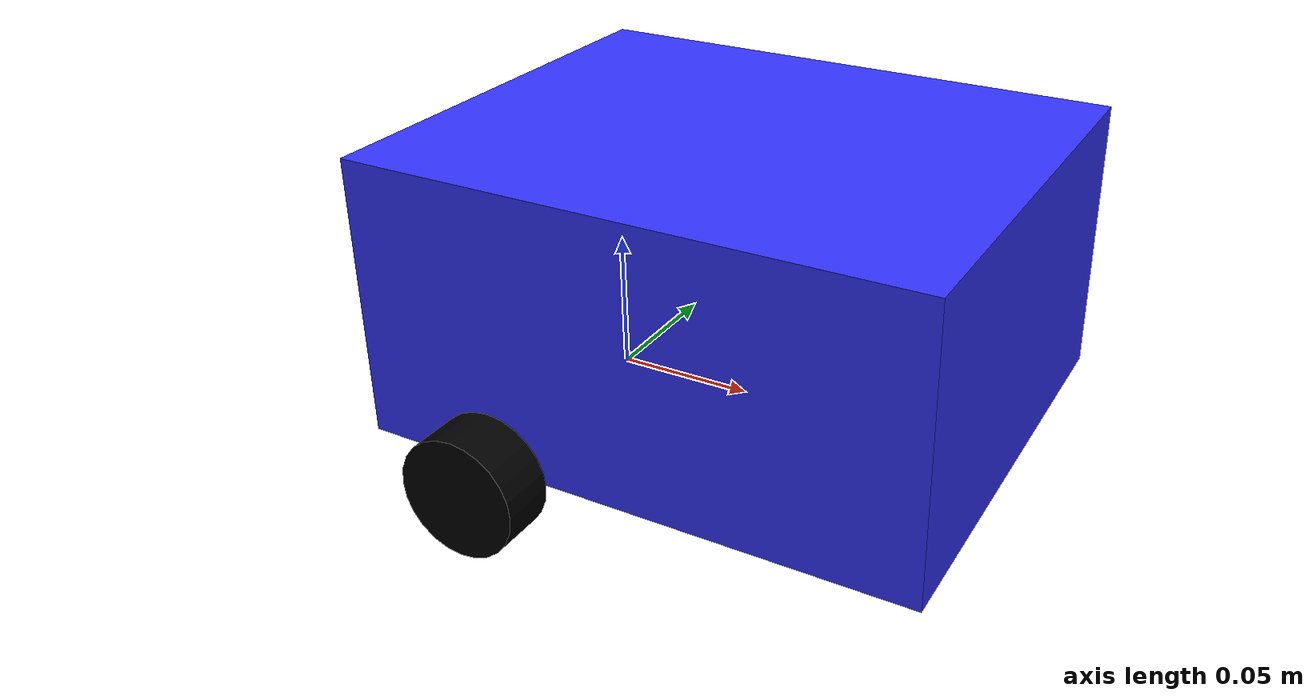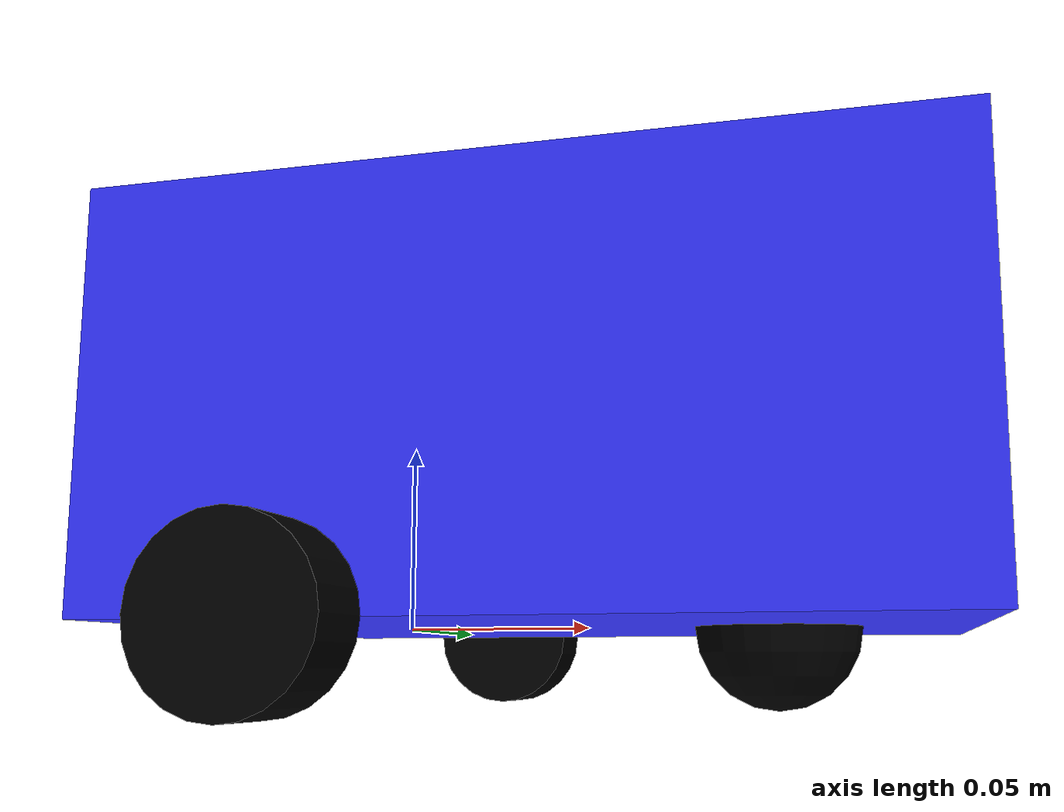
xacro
<?xml version="1.0"?>
<robot xmlns:xacro="http://www.ros.org/wiki/xacro" name= "diffbot">
    <xacro:include filename= "diffbot_core.xacro"/>

    <!-- Cargar los dos controladores-->
    <xacro:include filename= "ros2_control.xacro"/> <!-- En el launch se decide cual se activa para fucnionar -->
</robot>

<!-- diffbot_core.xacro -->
<robot xmlns:xacro="http://www.ros.org/wiki/xacro">
    <xacro:include filename= "inertias.xacro"/>

    <material name= "blue">
        <color rgba= "0.2 0.2 1 1"/>
    </material>

    <material name= "black">
        <color rgba= "0 0 0 1" />
    </material>

    <link name= "base_link"/>

    <link name= "chassis">
        <xacro:inertial_box mass="1.0" x="0.2" y="0.162" z="0.05">
            <origin xyz= "0.1 0 0.05" rpy="0 0 0" />
        </xacro:inertial_box>
        <visual>
            <origin xyz= "0.1 0 0.05"/>
            <geometry>
                <box size= "0.2 0.162 0.1" />
            </geometry>
            <material name= "blue"/>
        </visual>
        <collision>
            <origin xyz= "0.1 0 0.05"/>
            <geometry>
                <box size= "0.2 0.162 0.1" />
            </geometry>
            <material name= "blue"/>
        </collision>
    </link>

    <gazebo reference= "chassis">
        <material>Gazebo/Blue</material>
    </gazebo>

    <joint name= "chassis_joint" type= "fixed">
        <parent link= "base_link"/>
        <child link= "chassis"/>
        <origin xyz = "-0.05 0 0"/>
    </joint>

    <link name="right_wheel">
        <xacro:inertial_cylinder mass="0.1" length="0.019" radius="0.0215">
            <origin xyz= "0 0 0" rpy="0 0 0" />
        </xacro:inertial_cylinder>
        <visual>
            <origin xyz= "0 0 0"/>
            <geometry>
                <cylinder radius="0.0215" length="0.019"/>
            </geometry>
            <material name="black"/>
        </visual>
        <collision>
            <origin xyz= "0 0 0"/>
            <geometry>
                <cylinder radius="0.0215" length="0.019"/>
            </geometry>
            <material name="black"/>
        </collision>
    </link>

    <gazebo reference= "right_wheel">
        <material> Gazebo/Black </material>
    </gazebo>

    <joint name="right_wheel_joint" type="continuous">
        <parent link="base_link"/>
        <child link="right_wheel"/>
        <origin xyz="0.0 0.0917 0.0" rpy="-1.5708 0.0 0.0"/>
        <axis xyz="0 0 1"/>
    </joint>

    <link name="left_wheel">
        <xacro:inertial_cylinder mass="0.1" length="0.019" radius="0.0215">
            <origin xyz= "0 0 0" rpy="0 0 0" />
        </xacro:inertial_cylinder>
        <visual>
            <origin xyz= "0 0 0"/>
            <geometry>
                <cylinder radius="0.0215" length="0.019"/>
            </geometry>
            <material name="black"/>
        </visual>
        <collision>
            <origin xyz= "0 0 0"/>
            <geometry>
                <cylinder radius="0.0215" length="0.019"/>
            </geometry>
            <material name="black"/>
        </collision>
    </link>

    <gazebo reference= "left_wheel">
        <material> Gazebo/Black </material>
    </gazebo>

    <joint name="left_wheel_joint" type="continuous">
        <parent link="base_link"/>
        <child link="left_wheel"/>
        <origin xyz="0.0 -0.0917 0.0" rpy="-1.5708 0.0 0.0"/>
        <axis xyz="0 0 1"/>
    </joint>

    <link name="caster_wheel">
        <xacro:inertial_sphere mass="0.1" radius="0.0214">
            <origin xyz="0 0 0" rpy="0 0 0"/>
        </xacro:inertial_sphere>
        <visual>
            <origin xyz= "0 0 0"/>
            <geometry>
                <sphere radius="0.0214"/>
            </geometry>
            <material name="black"/>
        </visual>
        <collision>
            <origin xyz= "0 0 0"/>
            <geometry>
                <sphere radius="0.0214"/>
            </geometry>
            <material name="black"/>
        </collision>
    </link>

    <gazebo reference= "caster_wheel">
        <material>Gazebo/Black</material>
        <mu1 value= "0.001"/>
        <mu2 value= "0.001"/>
    </gazebo>

    <joint name="caster_wheel_joint" type="fixed">
        <parent link="base_link"/>
        <child link="caster_wheel"/>
        <origin xyz="0.1 0.0 0.0"/>
        <axis xyz="0 0 1"/>
    </joint>
</robot>

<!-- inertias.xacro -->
<robot xmlns:xacro="http://www.ros.org/wiki/xacro" >
    <xacro:macro name="inertial_sphere" params="mass radius *origin">
        <inertial>
            <xacro:insert_block name="origin"/>
            <mass value="${mass}" />
            <inertia ixx="${(2/5) * mass * (radius*radius)}" ixy="0.0" ixz="0.0"
                    iyy="${(2/5) * mass * (radius*radius)}" iyz="0.0"
                    izz="${(2/5) * mass * (radius*radius)}" />
        </inertial>
    </xacro:macro>

    <xacro:macro name="inertial_box" params="mass x y z *origin">
        <inertial>
            <xacro:insert_block name="origin"/>
            <mass value="${mass}" />
            <inertia ixx="${(1/12) * mass * (y*y+z*z)}" ixy="0.0" ixz="0.0"
                    iyy="${(1/12) * mass * (x*x+z*z)}" iyz="0.0"
                    izz="${(1/12) * mass * (x*x+y*y)}" />
        </inertial>
    </xacro:macro>

    <xacro:macro name="inertial_cylinder" params="mass length radius *origin">
        <inertial>
            <xacro:insert_block name="origin"/>
            <mass value="${mass}" />
            <inertia ixx="${(1/12) * mass * (3*radius*radius + length*length)}" ixy="0.0" ixz="0.0"
                    iyy="${(1/12) * mass * (3*radius*radius + length*length)}" iyz="0.0"
                    izz="${(1/2) * mass * (radius*radius)}" />
        </inertial>
    </xacro:macro>

</robot>
